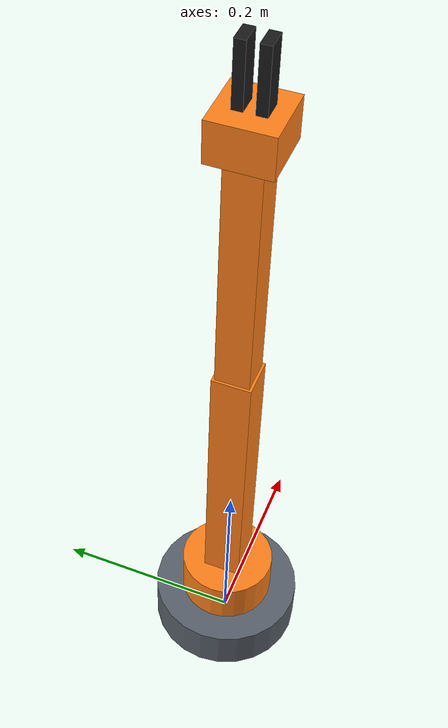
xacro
<?xml version="1.0"?>
<robot name="bras" xmlns:xacro="http://www.ros.org/wiki/xacro">

  <!-- Dimensions (m) : hauteur de l'épaule, bras, avant-bras, poignet jusqu'au centre de la pince -->
  <xacro:property name="h_epaule" value="0.10"/>
  <xacro:property name="l_bras" value="0.30"/>
  <xacro:property name="l_avant_bras" value="0.25"/>
  <xacro:property name="l_poignet" value="0.10"/>

  <material name="gris"><color rgba="0.35 0.38 0.42 1"/></material>
  <material name="orange"><color rgba="1.0 0.5 0.1 1"/></material>
  <material name="noir"><color rgba="0.1 0.1 0.1 1"/></material>

  <!-- Le socle, fixé à la table : le repère de référence du bras -->
  <link name="base_link">
    <visual>
      <origin xyz="0 0 0.025"/>
      <geometry><cylinder radius="0.08" length="0.05"/></geometry>
      <material name="gris"/>
    </visual>
  </link>

  <!-- La tourelle tourne autour de la verticale -->
  <joint name="base_rotation" type="revolute">
    <parent link="base_link"/>
    <child link="tourelle"/>
    <origin xyz="0 0 0.05"/>
    <axis xyz="0 0 1"/>
    <limit lower="${-pi}" upper="${pi}" effort="10" velocity="1.5"/>
  </joint>

  <link name="tourelle">
    <visual>
      <origin xyz="0 0 0.025"/>
      <geometry><cylinder radius="0.05" length="0.05"/></geometry>
      <material name="orange"/>
    </visual>
  </link>

  <!-- Un segment du bras : une articulation autour de l'axe « axe », puis une barre de longueur l -->
  <xacro:macro name="segment" params="articulation parent enfant z l largeur lower upper axe">
    <joint name="${articulation}" type="revolute">
      <parent link="${parent}"/>
      <child link="${enfant}"/>
      <origin xyz="0 0 ${z}"/>
      <axis xyz="${axe}"/>
      <limit lower="${lower}" upper="${upper}" effort="10" velocity="1.5"/>
    </joint>
    <link name="${enfant}">
      <visual>
        <origin xyz="0 0 ${l/2}"/>
        <geometry><box size="${largeur} ${largeur} ${l}"/></geometry>
        <material name="orange"/>
      </visual>
    </link>
  </xacro:macro>

  <xacro:segment articulation="epaule" parent="tourelle" enfant="bras" z="${h_epaule - 0.05}"
                 l="${l_bras}" largeur="0.04" lower="-1.6" upper="1.6" axe="0 1 0"/>
  <xacro:segment articulation="coude" parent="bras" enfant="avant_bras" z="${l_bras}"
                 l="${l_avant_bras}" largeur="0.035" lower="-2.2" upper="2.2" axe="1 0 0"/>
  <xacro:segment articulation="poignet" parent="avant_bras" enfant="main" z="${l_avant_bras}"
                 l="0.04" largeur="0.06" lower="-1.8" upper="1.8" axe="0 1 0"/>

  <!-- La pince : deux doigts qui s'écartent ensemble (le second imite le premier) -->
  <xacro:macro name="doigt" params="nom cote">
    <link name="doigt_${nom}">
      <visual>
        <origin xyz="0 ${cote * 0.005} 0.03"/>
        <geometry><box size="0.02 0.01 0.06"/></geometry>
        <material name="noir"/>
      </visual>
    </link>
  </xacro:macro>
  <xacro:doigt nom="gauche" cote="1"/>
  <xacro:doigt nom="droit" cote="-1"/>

  <joint name="pince" type="prismatic">
    <parent link="main"/>
    <child link="doigt_gauche"/>
    <origin xyz="0 0.005 0.04"/>
    <axis xyz="0 1 0"/>
    <limit lower="0" upper="0.03" effort="5" velocity="0.1"/>
  </joint>
  <joint name="pince_miroir" type="prismatic">
    <parent link="main"/>
    <child link="doigt_droit"/>
    <origin xyz="0 -0.005 0.04"/>
    <axis xyz="0 -1 0"/>
    <limit lower="0" upper="0.03" effort="5" velocity="0.1"/>
    <mimic joint="pince"/>
  </joint>

  <!-- tool0 : le point de prise, entre les doigts, à l_poignet du poignet -->
  <joint name="outil" type="fixed">
    <parent link="main"/>
    <child link="tool0"/>
    <origin xyz="0 0 ${l_poignet}"/>
  </joint>
  <link name="tool0"/>

</robot>
